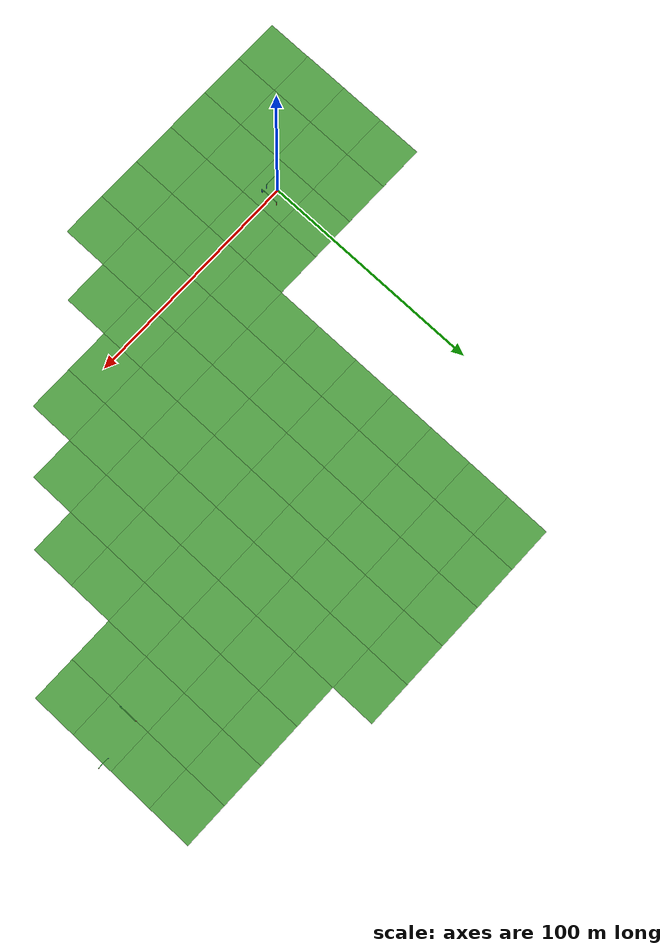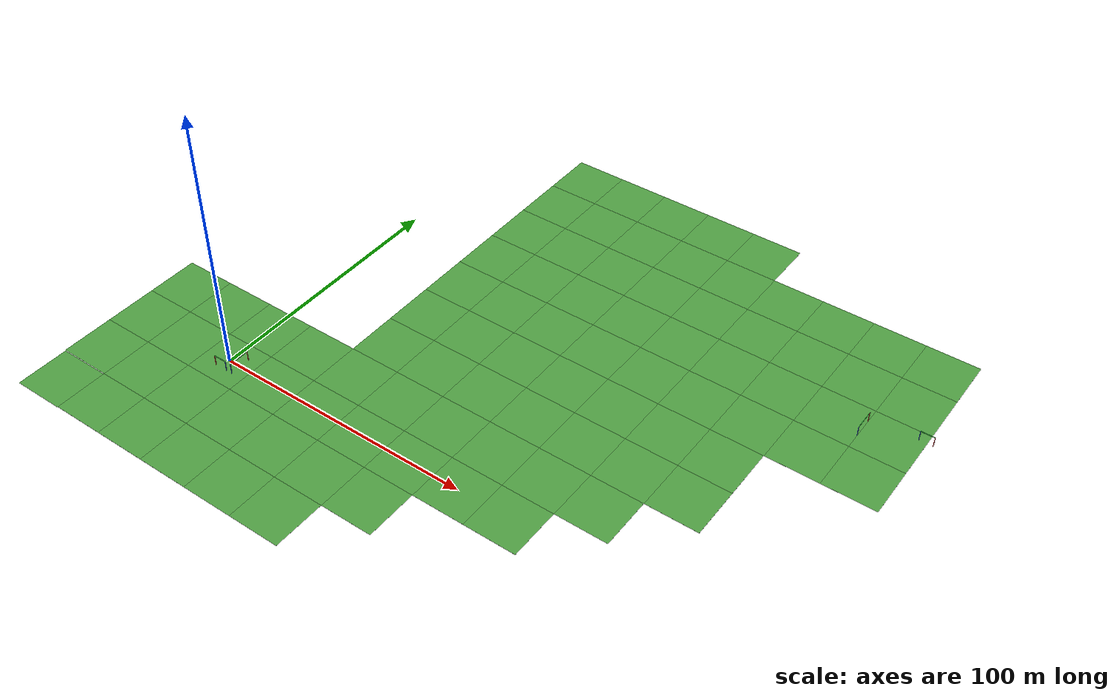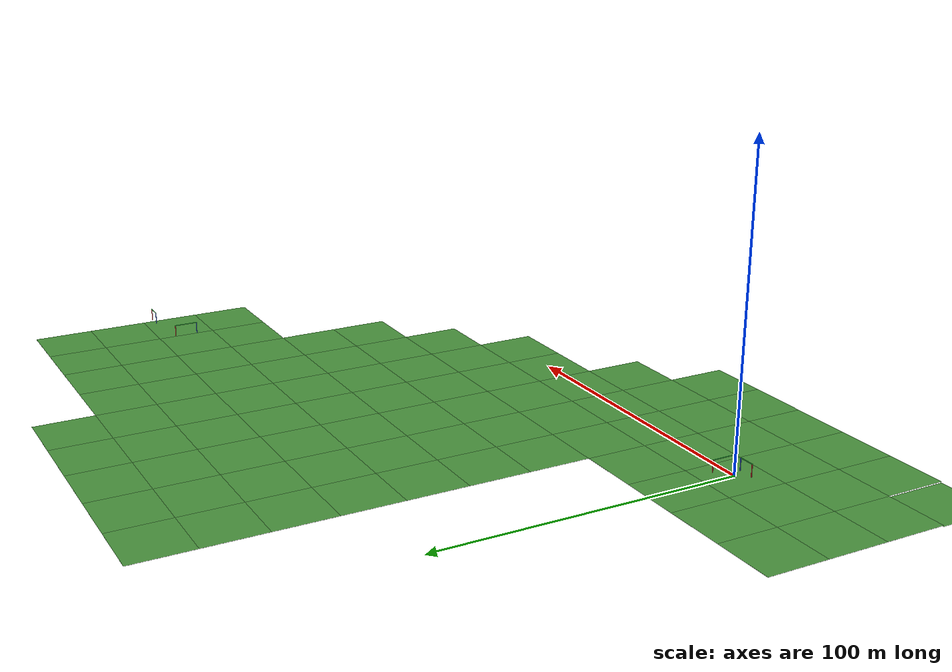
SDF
<sdf version="1.4">
 <world name="vrc_task_1">
  <scene><ambient>0.2 0.2 0.2 1.0</ambient><grid>false</grid></scene>
  <physics type="ode">
   <gravity>0 0 -9.81</gravity>
   <ode>
    <solver><type>quick</type><iters>50</iters><sor>1.4</sor></solver>
    <constraints>
     <cfm>0.0</cfm>
     <erp>0.2</erp>
     <contact_max_correcting_vel>100.0</contact_max_correcting_vel>
     <contact_surface_layer>0.0</contact_surface_layer>
    </constraints>
   </ode>
   <real_time_update_rate>1000</real_time_update_rate>
   <max_step_size>0.001</max_step_size>
  </physics>
  <light type="directional" name="sun">
   <cast_shadows>false</cast_shadows>
   <pose>0 0 100 0 0 0</pose>
   <diffuse>0.8 0.8 0.8 1</diffuse>
   <specular>0.9 0.9 0.9 1</specular>
   <attenuation>
    <range>1000</range>
    <constant>0.9</constant>
    <linear>0.01</linear>
    <quadratic>0.001</quadratic>
   </attenuation>
   <direction>0.2 0.2 -0.9</direction>
  </light>
  <light type="point" name="light_bulb">
   <cast_shadows>false</cast_shadows>
   <pose>-14 0 5 0 0 0</pose>
   <diffuse>0.3 0.3 0.3 1</diffuse>
   <specular>0.0 0.0 0.0 1</specular>
   <attenuation>
    <range>80</range>
    <constant>0.9</constant>
    <linear>0.01</linear>
    <quadratic>0.001</quadratic>
   </attenuation>
  </light>
  <include><uri>model://grass_plane</uri></include>
  <include>
   <uri>model://gate</uri>
   <name>gate_3</name>
   <static>true</static>
   <pose>0 -4 2.0 0 0 -1.5707</pose>
  </include>
  <include>
   <uri>model://gate</uri>
   <name>gate_0</name>
   <static>true</static>
   <pose>209.5 106 2.0 0 0 1.5707</pose>
  </include>
  <include>
   <uri>model://vehicle_gate</uri>
   <name>vehiclegate_1</name>
   <static>true</static>
   <pose>190 100 2.0 0 0 3.1415</pose>
  </include>
  <include>
   <uri>model://vehicle_gate</uri>
   <name>vehiclegate_2</name>
   <static>true</static>
   <pose>5 0 2.0 0 0 3.1415</pose>
  </include>
  <model name="road_boxes">
   <static>true</static>
   <link name="link">
    <collision name="collision_1">
     <pose>51 0 0 0 0 0</pose>
     <geometry><box><size>102 7.34 0.02</size></box></geometry>
     <surface><friction><ode><mu>100</mu><mu2>50</mu2></ode></friction></surface>
    </collision>
    <collision name="collision_2">
     <pose>125 25 0 0 0 0.78539</pose>
     <geometry><box><size>72 7.34 0.02</size></box></geometry>
     <surface><friction><ode><mu>100</mu><mu2>50</mu2></ode></friction></surface>
    </collision>
    <collision name="collision_3">
     <pose>150 75 0 0 0 0</pose>
     <geometry><box><size>7.34 53 0.02</size></box></geometry>
     <surface><friction><ode><mu>100</mu><mu2>50</mu2></ode></friction></surface>
    </collision>
    <collision name="collision_4">
     <pose>173.5 100 0 0 0 0</pose>
     <geometry><box><size>54.5 7.34 0.02</size></box></geometry>
     <surface><friction><ode><mu>100</mu><mu2>50</mu2></ode></friction></surface>
    </collision>
    <collision name="collision_5">
     <pose>0 -1 0 0 0 0</pose>
     <geometry><box><size>6 10 0.02</size></box></geometry>
     <surface><friction><ode><mu>100</mu><mu2>50</mu2></ode></friction></surface>
    </collision>
   </link>
  </model>
  <plugin filename="libVRCPlugin.so" name="vrc_plugin">
   <atlas><model_name>atlas</model_name><pin_link>utorso</pin_link></atlas>
   <drc_vehicle>
    <model_name>drc_vehicle</model_name>
    <seat_link>polaris_ranger_ev::chassis</seat_link>
   </drc_vehicle>
   <drc_fire_hose>
    <fire_hose_model>fire_hose</fire_hose_model>
    <coupling_link>coupling</coupling_link>
    <standpipe_model>standpipe</standpipe_model>
    <spout_link>standpipe</spout_link>
    <thread_pitch>-1000</thread_pitch>
    <coupling_relative_pose>1.17038e-05 -0.125623 0.35 -0.0412152 -1.57078 1.61199</coupling_relative_pose>
   </drc_fire_hose>
  </plugin>
  <plugin filename="libVRCScoringPlugin.so" name="vrc_scoring">
   <score_file>/tmp/vrc_final_task5/score.log</score_file>
  </plugin>
 </world>
</sdf>

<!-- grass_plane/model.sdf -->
<sdf version='1.4'>
  <model name='grass_plane'>
    <static>true</static>
    <link name='link'>
      <collision name='collision'>
        <geometry>
          <plane>
            <normal>0 0 1</normal>
            <size>500 500</size>
          </plane>
        </geometry>
        <surface>
          <friction>
            <ode>
              <mu>0.5</mu>
              <mu2>.5</mu2>
            </ode>
          </friction>
        </surface>
      </collision>

      <visual name='visual_0'>
        <pose>-40 -40 0 0 0 0</pose>

        <cast_shadows>false</cast_shadows>
        <geometry>
          <plane>
            <normal>0 0 1</normal>
            <size>20 20</size>
          </plane>
        </geometry>
        <material>
          <script>
            <uri>model://grass_plane/materials/scripts</uri>
            <uri>model://grass_plane/materials/textures</uri>
            <name>vrc/grass</name>
          </script>
        </material>
      </visual>

      <visual name='visual_1'>
        <pose>-20 -40 0 0 0 0</pose>

        <cast_shadows>false</cast_shadows>
        <geometry>
          <plane>
            <normal>0 0 1</normal>
            <size>20 20</size>
          </plane>
        </geometry>
        <material>
          <script>
            <uri>model://grass_plane/materials/scripts</uri>
            <uri>model://grass_plane/materials/textures</uri>
            <name>vrc/grass</name>
          </script>
        </material>
      </visual>

      <visual name='visual_2'>
        <pose>0 -40 0 0 0 0</pose>

        <cast_shadows>false</cast_shadows>
        <geometry>
          <plane>
            <normal>0 0 1</normal>
            <size>20 20</size>
          </plane>
        </geometry>
        <material>
          <script>
            <uri>model://grass_plane/materials/scripts</uri>
            <uri>model://grass_plane/materials/textures</uri>
            <name>vrc/grass</name>
          </script>
        </material>
      </visual>

      <visual name='visual_3'>
        <pose>20 -40 0 0 0 0</pose>

        <cast_shadows>false</cast_shadows>
        <geometry>
          <plane>
            <normal>0 0 1</normal>
            <size>20 20</size>
          </plane>
        </geometry>
        <material>
          <script>
            <uri>model://grass_plane/materials/scripts</uri>
            <uri>model://grass_plane/materials/textures</uri>
            <name>vrc/grass</name>
          </script>
        </material>
      </visual>

      <visual name='visual_4'>
        <pose>40 -40 0 0 0 0</pose>

        <cast_shadows>false</cast_shadows>
        <geometry>
          <plane>
            <normal>0 0 1</normal>
            <size>20 20</size>
          </plane>
        </geometry>
        <material>
          <script>
            <uri>model://grass_plane/materials/scripts</uri>
            <uri>model://grass_plane/materials/textures</uri>
            <name>vrc/grass</name>
          </script>
        </material>
      </visual>

      <visual name='visual_5'>
        <pose>60 -40 0 0 0 0</pose>

        <cast_shadows>false</cast_shadows>
        <geometry>
          <plane>
            <normal>0 0 1</normal>
            <size>20 20</size>
          </plane>
        </geometry>
        <material>
          <script>
            <uri>model://grass_plane/materials/scripts</uri>
            <uri>model://grass_plane/materials/textures</uri>
            <name>vrc/grass</name>
          </script>
        </material>
      </visual>

      <visual name='visual_6'>
        <pose>-40 -20 0 0 0 0</pose>

        <cast_shadows>false</cast_shadows>
        <geometry>
          <plane>
            <normal>0 0 1</normal>
            <size>20 20</size>
          </plane>
        </geometry>
        <material>
          <script>
            <uri>model://grass_plane/materials/scripts</uri>
            <uri>model://grass_plane/materials/textures</uri>
            <name>vrc/grass</name>
          </script>
        </material>
      </visual>

      <visual name='visual_7'>
        <pose>-20 -20 0 0 0 0</pose>

        <cast_shadows>false</cast_shadows>
        <geometry>
          <plane>
            <normal>0 0 1</normal>
            <size>20 20</size>
          </plane>
        </geometry>
        <material>
          <script>
            <uri>model://grass_plane/materials/scripts</uri>
            <uri>model://grass_plane/materials/textures</uri>
            <name>vrc/grass</name>
          </script>
        </material>
      </visual>

      <visual name='visual_8'>
        <pose>0 -20 0 0 0 0</pose>

        <cast_shadows>false</cast_shadows>
        <geometry>
          <plane>
            <normal>0 0 1</normal>
            <size>20 20</size>
          </plane>
        </geometry>
        <material>
          <script>
            <uri>model://grass_plane/materials/scripts</uri>
            <uri>model://grass_plane/materials/textures</uri>
            <name>vrc/grass</name>
          </script>
        </material>
      </visual>

      <visual name='visual_9'>
        <pose>20 -20 0 0 0 0</pose>

        <cast_shadows>false</cast_shadows>
        <geometry>
          <plane>
            <normal>0 0 1</normal>
            <size>20 20</size>
          </plane>
        </geometry>
        <material>
          <script>
            <uri>model://grass_plane/materials/scripts</uri>
            <uri>model://grass_plane/materials/textures</uri>
            <name>vrc/grass</name>
          </script>
        </material>
      </visual>

      <visual name='visual_10'>
        <pose>40 -20 0 0 0 0</pose>

        <cast_shadows>false</cast_shadows>
        <geometry>
          <plane>
            <normal>0 0 1</normal>
            <size>20 20</size>
          </plane>
        </geometry>
        <material>
          <script>
            <uri>model://grass_plane/materials/scripts</uri>
            <uri>model://grass_plane/materials/textures</uri>
            <name>vrc/grass</name>
          </script>
        </material>
      </visual>

      <visual name='visual_11'>
        <pose>60 -20 0 0 0 0</pose>

        <cast_shadows>false</cast_shadows>
        <geometry>
          <plane>
            <normal>0 0 1</normal>
            <size>20 20</size>
          </plane>
        </geometry>
        <material>
          <script>
            <uri>model://grass_plane/materials/scripts</uri>
            <uri>model://grass_plane/materials/textures</uri>
            <name>vrc/grass</name>
          </script>
        </material>
      </visual>

      <visual name='visual_12'>
        <pose>80 -20 0 0 0 0</pose>

        <cast_shadows>false</cast_shadows>
        <geometry>
          <plane>
            <normal>0 0 1</normal>
            <size>20 20</size>
          </plane>
        </geometry>
        <material>
          <script>
            <uri>model://grass_plane/materials/scripts</uri>
            <uri>model://grass_plane/materials/textures</uri>
            <name>vrc/grass</name>
          </script>
        </material>
      </visual>

      <visual name='visual_13'>
        <pose>-40 0 0 0 0 0</pose>

        <cast_shadows>false</cast_shadows>
        <geometry>
          <plane>
            <normal>0 0 1</normal>
            <size>20 20</size>
          </plane>
        </geometry>
        <material>
          <script>
            <uri>model://grass_plane/materials/scripts</uri>
            <uri>model://grass_plane/materials/textures</uri>
            <name>vrc/grass</name>
          </script>
        </material>
      </visual>

      <visual name='visual_14'>
        <pose>-20 0 0 0 0 0</pose>

        <cast_shadows>false</cast_shadows>
        <geometry>
          <plane>
            <normal>0 0 1</normal>
            <size>20 20</size>
          </plane>
        </geometry>
        <material>
          <script>
            <uri>model://grass_plane/materials/scripts</uri>
            <uri>model://grass_plane/materials/textures</uri>
            <name>vrc/grass</name>
          </script>
        </material>
      </visual>

      <visual name='visual_15'>
        <pose>0 0 0 0 0 0</pose>

        <cast_shadows>false</cast_shadows>
        <geometry>
          <plane>
            <normal>0 0 1</normal>
            <size>20 20</size>
          </plane>
        </geometry>
        <material>
          <script>
            <uri>model://grass_plane/materials/scripts</uri>
            <uri>model://grass_plane/materials/textures</uri>
            <name>vrc/grass</name>
          </script>
        </material>
      </visual>

      <visual name='visual_16'>
        <pose>20 0 0 0 0 0</pose>

        <cast_shadows>false</cast_shadows>
        <geometry>
          <plane>
            <normal>0 0 1</normal>
            <size>20 20</size>
          </plane>
        </geometry>
        <material>
          <script>
            <uri>model://grass_plane/materials/scripts</uri>
            <uri>model://grass_plane/materials/textures</uri>
            <name>vrc/grass</name>
          </script>
        </material>
      </visual>

      <visual name='visual_17'>
        <pose>40 0 0 0 0 0</pose>

        <cast_shadows>false</cast_shadows>
        <geometry>
          <plane>
            <normal>0 0 1</normal>
            <size>20 20</size>
          </plane>
        </geometry>
        <material>
          <script>
            <uri>model://grass_plane/materials/scripts</uri>
            <uri>model://grass_plane/materials/textures</uri>
            <name>vrc/grass</name>
          </script>
        </material>
      </visual>

      <visual name='visual_18'>
        <pose>60 0 0 0 0 0</pose>

        <cast_shadows>false</cast_shadows>
        <geometry>
          <plane>
            <normal>0 0 1</normal>
            <size>20 20</size>
          </plane>
        </geometry>
        <material>
          <script>
            <uri>model://grass_plane/materials/scripts</uri>
            <uri>model://grass_plane/materials/textures</uri>
            <name>vrc/grass</name>
          </script>
        </material>
      </visual>

      <visual name='visual_19'>
        <pose>80 0 0 0 0 0</pose>

        <cast_shadows>false</cast_shadows>
        <geometry>
          <plane>
            <normal>0 0 1</normal>
            <size>20 20</size>
          </plane>
        </geometry>
        <material>
          <script>
            <uri>model://grass_plane/materials/scripts</uri>
            <uri>model://grass_plane/materials/textures</uri>
            <name>vrc/grass</name>
          </script>
        </material>
      </visual>

      <visual name='visual_20'>
        <pose>100 0 0 0 0 0</pose>

        <cast_shadows>false</cast_shadows>
        <geometry>
          <plane>
            <normal>0 0 1</normal>
            <size>20 20</size>
          </plane>
        </geometry>
        <material>
          <script>
            <uri>model://grass_plane/materials/scripts</uri>
            <uri>model://grass_plane/materials/textures</uri>
            <name>vrc/grass</name>
          </script>
        </material>
      </visual>

      <visual name='visual_21'>
        <pose>120 0 0 0 0 0</pose>

        <cast_shadows>false</cast_shadows>
        <geometry>
          <plane>
            <normal>0 0 1</normal>
            <size>20 20</size>
          </plane>
        </geometry>
        <material>
          <script>
            <uri>model://grass_plane/materials/scripts</uri>
            <uri>model://grass_plane/materials/textures</uri>
            <name>vrc/grass</name>
          </script>
        </material>
      </visual>

      <visual name='visual_22'>
        <pose>-40 20 0 0 0 0</pose>

        <cast_shadows>false</cast_shadows>
        <geometry>
          <plane>
            <normal>0 0 1</normal>
            <size>20 20</size>
          </plane>
        </geometry>
        <material>
          <script>
            <uri>model://grass_plane/materials/scripts</uri>
            <uri>model://grass_plane/materials/textures</uri>
            <name>vrc/grass</name>
          </script>
        </material>
      </visual>

      <visual name='visual_23'>
        <pose>-20 20 0 0 0 0</pose>

        <cast_shadows>false</cast_shadows>
        <geometry>
          <plane>
            <normal>0 0 1</normal>
            <size>20 20</size>
          </plane>
        </geometry>
        <material>
          <script>
            <uri>model://grass_plane/materials/scripts</uri>
            <uri>model://grass_plane/materials/textures</uri>
            <name>vrc/grass</name>
          </script>
        </material>
      </visual>

      <visual name='visual_24'>
        <pose>0 20 0 0 0 0</pose>

        <cast_shadows>false</cast_shadows>
        <geometry>
          <plane>
            <normal>0 0 1</normal>
            <size>20 20</size>
          </plane>
        </geometry>
        <material>
          <script>
            <uri>model://grass_plane/materials/scripts</uri>
            <uri>model://grass_plane/materials/textures</uri>
            <name>vrc/grass</name>
          </script>
        </material>
      </visual>

      <visual name='visual_25'>
        <pose>20 20 0 0 0 0</pose>

        <cast_shadows>false</cast_shadows>
        <geometry>
          <plane>
            <normal>0 0 1</normal>
            <size>20 20</size>
          </plane>
        </geometry>
        <material>
          <script>
            <uri>model://grass_plane/materials/scripts</uri>
            <uri>model://grass_plane/materials/textures</uri>
            <name>vrc/grass</name>
          </script>
        </material>
      </visual>

      <visual name='visual_26'>
        <pose>40 20 0 0 0 0</pose>

        <cast_shadows>false</cast_shadows>
        <geometry>
          <plane>
            <normal>0 0 1</normal>
            <size>20 20</size>
          </plane>
        </geometry>
        <material>
          <script>
            <uri>model://grass_plane/materials/scripts</uri>
            <uri>model://grass_plane/materials/textures</uri>
            <name>vrc/grass</name>
          </script>
        </material>
      </visual>

      <visual name='visual_27'>
        <pose>60 20 0 0 0 0</pose>

        <cast_shadows>false</cast_shadows>
        <geometry>
          <plane>
            <normal>0 0 1</normal>
            <size>20 20</size>
          </plane>
        </geometry>
        <material>
          <script>
            <uri>model://grass_plane/materials/scripts</uri>
            <uri>model://grass_plane/materials/textures</uri>
            <name>vrc/grass</name>
          </script>
        </material>
      </visual>

      <visual name='visual_28'>
        <pose>80 20 0 0 0 0</pose>

        <cast_shadows>false</cast_shadows>
        <geometry>
          <plane>
            <normal>0 0 1</normal>
            <size>20 20</size>
          </plane>
        </geometry>
        <material>
          <script>
            <uri>model://grass_plane/materials/scripts</uri>
            <uri>model://grass_plane/materials/textures</uri>
            <name>vrc/grass</name>
          </script>
        </material>
      </visual>

      <visual name='visual_29'>
        <pose>100 20 0 0 0 0</pose>

        <cast_shadows>false</cast_shadows>
        <geometry>
          <plane>
            <normal>0 0 1</normal>
            <size>20 20</size>
          </plane>
        </geometry>
        <material>
          <script>
            <uri>model://grass_plane/materials/scripts</uri>
            <uri>model://grass_plane/materials/textures</uri>
            <name>vrc/grass</name>
          </script>
        </material>
      </visual>

      <visual name='visual_30'>
        <pose>120 20 0 0 0 0</pose>

        <cast_shadows>false</cast_shadows>
        <geometry>
          <plane>
            <normal>0 0 1</normal>
            <size>20 20</size>
          </plane>
        </geometry>
        <material>
          <script>
            <uri>model://grass_plane/materials/scripts</uri>
            <uri>model://grass_plane/materials/textures</uri>
            <name>vrc/grass</name>
          </script>
        </material>
      </visual>

      <visual name='visual_31'>
        <pose>140 20 0 0 0 0</pose>

        <cast_shadows>false</cast_shadows>
        <geometry>
          <plane>
            <normal>0 0 1</normal>
            <size>20 20</size>
          </plane>
        </geometry>
        <material>
          <script>
            <uri>model://grass_plane/materials/scripts</uri>
            <uri>model://grass_plane/materials/textures</uri>
            <name>vrc/grass</name>
          </script>
        </material>
      </visual>

      <visual name='visual_32'>
        <pose>40 40 0 0 0 0</pose>

        <cast_shadows>false</cast_shadows>
        <geometry>
          <plane>
            <normal>0 0 1</normal>
            <size>20 20</size>
          </plane>
        </geometry>
        <material>
          <script>
            <uri>model://grass_plane/materials/scripts</uri>
            <uri>model://grass_plane/materials/textures</uri>
            <name>vrc/grass</name>
          </script>
        </material>
      </visual>

      <visual name='visual_33'>
        <pose>60 40 0 0 0 0</pose>

        <cast_shadows>false</cast_shadows>
        <geometry>
          <plane>
            <normal>0 0 1</normal>
            <size>20 20</size>
          </plane>
        </geometry>
        <material>
          <script>
            <uri>model://grass_plane/materials/scripts</uri>
            <uri>model://grass_plane/materials/textures</uri>
            <name>vrc/grass</name>
          </script>
        </material>
      </visual>

      <visual name='visual_34'>
        <pose>80 40 0 0 0 0</pose>

        <cast_shadows>false</cast_shadows>
        <geometry>
          <plane>
            <normal>0 0 1</normal>
            <size>20 20</size>
          </plane>
        </geometry>
        <material>
          <script>
            <uri>model://grass_plane/materials/scripts</uri>
            <uri>model://grass_plane/materials/textures</uri>
            <name>vrc/grass</name>
          </script>
        </material>
      </visual>

      <visual name='visual_35'>
        <pose>100 40 0 0 0 0</pose>

        <cast_shadows>false</cast_shadows>
        <geometry>
          <plane>
            <normal>0 0 1</normal>
            <size>20 20</size>
          </plane>
        </geometry>
        <material>
          <script>
            <uri>model://grass_plane/materials/scripts</uri>
            <uri>model://grass_plane/materials/textures</uri>
            <name>vrc/grass</name>
          </script>
        </material>
      </visual>

      <visual name='visual_36'>
        <pose>120 40 0 0 0 0</pose>

        <cast_shadows>false</cast_shadows>
        <geometry>
          <plane>
            <normal>0 0 1</normal>
            <size>20 20</size>
          </plane>
        </geometry>
        <material>
          <script>
            <uri>model://grass_plane/materials/scripts</uri>
            <uri>model://grass_plane/materials/textures</uri>
            <name>vrc/grass</name>
          </script>
        </material>
      </visual>

      <visual name='visual_37'>
        <pose>140 40 0 0 0 0</pose>

        <cast_shadows>false</cast_shadows>
        <geometry>
          <plane>
            <normal>0 0 1</normal>
            <size>20 20</size>
          </plane>
        </geometry>
        <material>
          <script>
            <uri>model://grass_plane/materials/scripts</uri>
            <uri>model://grass_plane/materials/textures</uri>
            <name>vrc/grass</name>
          </script>
        </material>
      </visual>

      <visual name='visual_38'>
        <pose>160 40 0 0 0 0</pose>

        <cast_shadows>false</cast_shadows>
        <geometry>
          <plane>
            <normal>0 0 1</normal>
            <size>20 20</size>
          </plane>
        </geometry>
        <material>
          <script>
            <uri>model://grass_plane/materials/scripts</uri>
            <uri>model://grass_plane/materials/textures</uri>
            <name>vrc/grass</name>
          </script>
        </material>
      </visual>

      <visual name='visual_39'>
        <pose>40 60 0 0 0 0</pose>

        <cast_shadows>false</cast_shadows>
        <geometry>
          <plane>
            <normal>0 0 1</normal>
            <size>20 20</size>
          </plane>
        </geometry>
        <material>
          <script>
            <uri>model://grass_plane/materials/scripts</uri>
            <uri>model://grass_plane/materials/textures</uri>
            <name>vrc/grass</name>
          </script>
        </material>
      </visual>

      <visual name='visual_40'>
        <pose>60 60 0 0 0 0</pose>

        <cast_shadows>false</cast_shadows>
        <geometry>
          <plane>
            <normal>0 0 1</normal>
            <size>20 20</size>
          </plane>
        </geometry>
        <material>
          <script>
            <uri>model://grass_plane/materials/scripts</uri>
            <uri>model://grass_plane/materials/textures</uri>
            <name>vrc/grass</name>
          </script>
        </material>
      </visual>

      <visual name='visual_41'>
        <pose>80 60 0 0 0 0</pose>

        <cast_shadows>false</cast_shadows>
        <geometry>
          <plane>
            <normal>0 0 1</normal>
            <size>20 20</size>
          </plane>
        </geometry>
        <material>
          <script>
            <uri>model://grass_plane/materials/scripts</uri>
            <uri>model://grass_plane/materials/textures</uri>
            <name>vrc/grass</name>
          </script>
        </material>
      </visual>

      <visual name='visual_42'>
        <pose>100 60 0 0 0 0</pose>

        <cast_shadows>false</cast_shadows>
        <geometry>
          <plane>
            <normal>0 0 1</normal>
            <size>20 20</size>
          </plane>
        </geometry>
        <material>
          <script>
            <uri>model://grass_plane/materials/scripts</uri>
            <uri>model://grass_plane/materials/textures</uri>
            <name>vrc/grass</name>
          </script>
        </material>
      </visual>

      <visual name='visual_43'>
        <pose>120 60 0 0 0 0</pose>

        <cast_shadows>false</cast_shadows>
        <geometry>
          <plane>
            <normal>0 0 1</normal>
            <size>20 20</size>
          </plane>
        </geometry>
        <material>
          <script>
            <uri>model://grass_plane/materials/scripts</uri>
            <uri>model://grass_plane/materials/textures</uri>
            <name>vrc/grass</name>
          </script>
        </material>
      </visual>

      <visual name='visual_44'>
        <pose>140 60 0 0 0 0</pose>

        <cast_shadows>false</cast_shadows>
        <geometry>
          <plane>
            <normal>0 0 1</normal>
            <size>20 20</size>
          </plane>
        </geometry>
        <material>
          <script>
            <uri>model://grass_plane/materials/scripts</uri>
            <uri>model://grass_plane/materials/textures</uri>
            <name>vrc/grass</name>
          </script>
        </material>
      </visual>

      <visual name='visual_45'>
        <pose>160 60 0 0 0 0</pose>

        <cast_shadows>false</cast_shadows>
        <geometry>
          <plane>
            <normal>0 0 1</normal>
            <size>20 20</size>
          </plane>
        </geometry>
        <material>
          <script>
            <uri>model://grass_plane/materials/scripts</uri>
            <uri>model://grass_plane/materials/textures</uri>
            <name>vrc/grass</name>
          </script>
        </material>
      </visual>

      <visual name='visual_46'>
        <pose>40 80 0 0 0 0</pose>

        <cast_shadows>false</cast_shadows>
        <geometry>
          <plane>
            <normal>0 0 1</normal>
            <size>20 20</size>
          </plane>
        </geometry>
        <material>
          <script>
            <uri>model://grass_plane/materials/scripts</uri>
            <uri>model://grass_plane/materials/textures</uri>
            <name>vrc/grass</name>
          </script>
        </material>
      </visual>

      <visual name='visual_47'>
        <pose>60 80 0 0 0 0</pose>

        <cast_shadows>false</cast_shadows>
        <geometry>
          <plane>
            <normal>0 0 1</normal>
            <size>20 20</size>
          </plane>
        </geometry>
        <material>
          <script>
            <uri>model://grass_plane/materials/scripts</uri>
            <uri>model://grass_plane/materials/textures</uri>
            <name>vrc/grass</name>
          </script>
        </material>
      </visual>

      <visual name='visual_48'>
        <pose>80 80 0 0 0 0</pose>

        <cast_shadows>false</cast_shadows>
        <geometry>
          <plane>
            <normal>0 0 1</normal>
            <size>20 20</size>
          </plane>
        </geometry>
        <material>
          <script>
            <uri>model://grass_plane/materials/scripts</uri>
            <uri>model://grass_plane/materials/textures</uri>
            <name>vrc/grass</name>
          </script>
        </material>
      </visual>

      <visual name='visual_49'>
        <pose>100 80 0 0 0 0</pose>

        <cast_shadows>false</cast_shadows>
        <geometry>
          <plane>
            <normal>0 0 1</normal>
            <size>20 20</size>
          </plane>
        </geometry>
        <material>
          <script>
            <uri>model://grass_plane/materials/scripts</uri>
            <uri>model://grass_plane/materials/textures</uri>
            <name>vrc/grass</name>
          </script>
        </material>
      </visual>

      <visual name='visual_50'>
        <pose>120 80 0 0 0 0</pose>

        <cast_shadows>false</cast_shadows>
        <geometry>
          <plane>
            <normal>0 0 1</normal>
            <size>20 20</size>
          </plane>
        </geometry>
        <material>
          <script>
            <uri>model://grass_plane/materials/scripts</uri>
            <uri>model://grass_plane/materials/textures</uri>
            <name>vrc/grass</name>
          </script>
        </material>
      </visual>

      <visual name='visual_51'>
        <pose>140 80 0 0 0 0</pose>

        <cast_shadows>false</cast_shadows>
        <geometry>
          <plane>
            <normal>0 0 1</normal>
            <size>20 20</size>
          </plane>
        </geometry>
        <material>
          <script>
            <uri>model://grass_plane/materials/scripts</uri>
            <uri>model://grass_plane/materials/textures</uri>
            <name>vrc/grass</name>
          </script>
        </material>
      </visual>

      <visual name='visual_52'>
        <pose>160 80 0 0 0 0</pose>

        <cast_shadows>false</cast_shadows>
        <geometry>
          <plane>
            <normal>0 0 1</normal>
            <size>20 20</size>
          </plane>
        </geometry>
        <material>
          <script>
            <uri>model://grass_plane/materials/scripts</uri>
            <uri>model://grass_plane/materials/textures</uri>
            <name>vrc/grass</name>
          </script>
        </material>
      </visual>

      <visual name='visual_53'>
        <pose>180 80 0 0 0 0</pose>

        <cast_shadows>false</cast_shadows>
        <geometry>
          <plane>
            <normal>0 0 1</normal>
            <size>20 20</size>
          </plane>
        </geometry>
        <material>
          <script>
            <uri>model://grass_plane/materials/scripts</uri>
            <uri>model://grass_plane/materials/textures</uri>
            <name>vrc/grass</name>
          </script>
        </material>
      </visual>

      <visual name='visual_54'>
        <pose>200 80 0 0 0 0</pose>

        <cast_shadows>false</cast_shadows>
        <geometry>
          <plane>
            <normal>0 0 1</normal>
            <size>20 20</size>
          </plane>
        </geometry>
        <material>
          <script>
            <uri>model://grass_plane/materials/scripts</uri>
            <uri>model://grass_plane/materials/textures</uri>
            <name>vrc/grass</name>
          </script>
        </material>
      </visual>

      <visual name='visual_55'>
        <pose>40 100 0 0 0 0</pose>

        <cast_shadows>false</cast_shadows>
        <geometry>
          <plane>
            <normal>0 0 1</normal>
            <size>20 20</size>
          </plane>
        </geometry>
        <material>
          <script>
            <uri>model://grass_plane/materials/scripts</uri>
            <uri>model://grass_plane/materials/textures</uri>
            <name>vrc/grass</name>
          </script>
        </material>
      </visual>

      <visual name='visual_56'>
        <pose>60 100 0 0 0 0</pose>

        <cast_shadows>false</cast_shadows>
        <geometry>
          <plane>
            <normal>0 0 1</normal>
            <size>20 20</size>
          </plane>
        </geometry>
        <material>
          <script>
            <uri>model://grass_plane/materials/scripts</uri>
            <uri>model://grass_plane/materials/textures</uri>
            <name>vrc/grass</name>
          </script>
        </material>
      </visual>

      <visual name='visual_57'>
        <pose>80 100 0 0 0 0</pose>

        <cast_shadows>false</cast_shadows>
        <geometry>
          <plane>
            <normal>0 0 1</normal>
            <size>20 20</size>
          </plane>
        </geometry>
        <material>
          <script>
            <uri>model://grass_plane/materials/scripts</uri>
            <uri>model://grass_plane/materials/textures</uri>
            <name>vrc/grass</name>
          </script>
        </material>
      </visual>

      <visual name='visual_58'>
        <pose>100 100 0 0 0 0</pose>

        <cast_shadows>false</cast_shadows>
        <geometry>
          <plane>
            <normal>0 0 1</normal>
            <size>20 20</size>
          </plane>
        </geometry>
        <material>
          <script>
            <uri>model://grass_plane/materials/scripts</uri>
            <uri>model://grass_plane/materials/textures</uri>
            <name>vrc/grass</name>
          </script>
        </material>
      </visual>

      <visual name='visual_59'>
        <pose>120 100 0 0 0 0</pose>

        <cast_shadows>false</cast_shadows>
        <geometry>
          <plane>
            <normal>0 0 1</normal>
            <size>20 20</size>
          </plane>
        </geometry>
        <material>
          <script>
            <uri>model://grass_plane/materials/scripts</uri>
            <uri>model://grass_plane/materials/textures</uri>
            <name>vrc/grass</name>
          </script>
        </material>
      </visual>

      <visual name='visual_60'>
        <pose>140 100 0 0 0 0</pose>

        <cast_shadows>false</cast_shadows>
        <geometry>
          <plane>
            <normal>0 0 1</normal>
            <size>20 20</size>
          </plane>
        </geometry>
        <material>
          <script>
            <uri>model://grass_plane/materials/scripts</uri>
            <uri>model://grass_plane/materials/textures</uri>
            <name>vrc/grass</name>
          </script>
        </material>
      </visual>

      <visual name='visual_61'>
        <pose>160 100 0 0 0 0</pose>

        <cast_shadows>false</cast_shadows>
        <geometry>
          <plane>
            <normal>0 0 1</normal>
            <size>20 20</size>
          </plane>
        </geometry>
        <material>
          <script>
            <uri>model://grass_plane/materials/scripts</uri>
            <uri>model://grass_plane/materials/textures</uri>
            <name>vrc/grass</name>
          </script>
        </material>
      </visual>

      <visual name='visual_62'>
        <pose>180 100 0 0 0 0</pose>

        <cast_shadows>false</cast_shadows>
        <geometry>
          <plane>
            <normal>0 0 1</normal>
            <size>20 20</size>
          </plane>
        </geometry>
        <material>
          <script>
            <uri>model://grass_plane/materials/scripts</uri>
            <uri>model://grass_plane/materials/textures</uri>
            <name>vrc/grass</name>
          </script>
        </material>
      </visual>

      <visual name='visual_63'>
        <pose>200 100 0 0 0 0</pose>

        <cast_shadows>false</cast_shadows>
        <geometry>
          <plane>
            <normal>0 0 1</normal>
            <size>20 20</size>
          </plane>
        </geometry>
        <material>
          <script>
            <uri>model://grass_plane/materials/scripts</uri>
            <uri>model://grass_plane/materials/textures</uri>
            <name>vrc/grass</name>
          </script>
        </material>
      </visual>

      <visual name='visual_64'>
        <pose>40 120 0 0 0 0</pose>

        <cast_shadows>false</cast_shadows>
        <geometry>
          <plane>
            <normal>0 0 1</normal>
            <size>20 20</size>
          </plane>
        </geometry>
        <material>
          <script>
            <uri>model://grass_plane/materials/scripts</uri>
            <uri>model://grass_plane/materials/textures</uri>
            <name>vrc/grass</name>
          </script>
        </material>
      </visual>

      <visual name='visual_65'>
        <pose>60 120 0 0 0 0</pose>

        <cast_shadows>false</cast_shadows>
        <geometry>
          <plane>
            <normal>0 0 1</normal>
            <size>20 20</size>
          </plane>
        </geometry>
        <material>
          <script>
            <uri>model://grass_plane/materials/scripts</uri>
            <uri>model://grass_plane/materials/textures</uri>
            <name>vrc/grass</name>
          </script>
        </material>
      </visual>

      <visual name='visual_66'>
        <pose>80 120 0 0 0 0</pose>

        <cast_shadows>false</cast_shadows>
        <geometry>
          <plane>
            <normal>0 0 1</normal>
            <size>20 20</size>
          </plane>
        </geometry>
        <material>
          <script>
            <uri>model://grass_plane/materials/scripts</uri>
            <uri>model://grass_plane/materials/textures</uri>
            <name>vrc/grass</name>
          </script>
        </material>
      </visual>

      <visual name='visual_67'>
        <pose>100 120 0 0 0 0</pose>

        <cast_shadows>false</cast_shadows>
        <geometry>
          <plane>
            <normal>0 0 1</normal>
            <size>20 20</size>
          </plane>
        </geometry>
        <material>
          <script>
            <uri>model://grass_plane/materials/scripts</uri>
            <uri>model://grass_plane/materials/textures</uri>
            <name>vrc/grass</name>
          </script>
        </material>
      </visual>

      <visual name='visual_68'>
        <pose>120 120 0 0 0 0</pose>

        <cast_shadows>false</cast_shadows>
        <geometry>
          <plane>
            <normal>0 0 1</normal>
            <size>20 20</size>
          </plane>
        </geometry>
        <material>
          <script>
            <uri>model://grass_plane/materials/scripts</uri>
            <uri>model://grass_plane/materials/textures</uri>
            <name>vrc/grass</name>
          </script>
        </material>
      </visual>

      <visual name='visual_69'>
        <pose>140 120 0 0 0 0</pose>

        <cast_shadows>false</cast_shadows>
        <geometry>
          <plane>
            <normal>0 0 1</normal>
            <size>20 20</size>
          </plane>
        </geometry>
        <material>
          <script>
            <uri>model://grass_plane/materials/scripts</uri>
            <uri>model://grass_plane/materials/textures</uri>
            <name>vrc/grass</name>
          </script>
        </material>
      </visual>

      <visual name='visual_70'>
        <pose>160 120 0 0 0 0</pose>

        <cast_shadows>false</cast_shadows>
        <geometry>
          <plane>
            <normal>0 0 1</normal>
            <size>20 20</size>
          </plane>
        </geometry>
        <material>
          <script>
            <uri>model://grass_plane/materials/scripts</uri>
            <uri>model://grass_plane/materials/textures</uri>
            <name>vrc/grass</name>
          </script>
        </material>
      </visual>

      <visual name='visual_71'>
        <pose>180 120 0 0 0 0</pose>

        <cast_shadows>false</cast_shadows>
        <geometry>
          <plane>
            <normal>0 0 1</normal>
            <size>20 20</size>
          </plane>
        </geometry>
        <material>
          <script>
            <uri>model://grass_plane/materials/scripts</uri>
            <uri>model://grass_plane/materials/textures</uri>
            <name>vrc/grass</name>
          </script>
        </material>
      </visual>

      <visual name='visual_72'>
        <pose>200 120 0 0 0 0</pose>

        <cast_shadows>false</cast_shadows>
        <geometry>
          <plane>
            <normal>0 0 1</normal>
            <size>20 20</size>
          </plane>
        </geometry>
        <material>
          <script>
            <uri>model://grass_plane/materials/scripts</uri>
            <uri>model://grass_plane/materials/textures</uri>
            <name>vrc/grass</name>
          </script>
        </material>
      </visual>

      <visual name='visual_73'>
        <pose>40 140 0 0 0 0</pose>

        <cast_shadows>false</cast_shadows>
        <geometry>
          <plane>
            <normal>0 0 1</normal>
            <size>20 20</size>
          </plane>
        </geometry>
        <material>
          <script>
            <uri>model://grass_plane/materials/scripts</uri>
            <uri>model://grass_plane/materials/textures</uri>
            <name>vrc/grass</name>
          </script>
        </material>
      </visual>

      <visual name='visual_74'>
        <pose>60 140 0 0 0 0</pose>

        <cast_shadows>false</cast_shadows>
        <geometry>
          <plane>
            <normal>0 0 1</normal>
            <size>20 20</size>
          </plane>
        </geometry>
        <material>
          <script>
            <uri>model://grass_plane/materials/scripts</uri>
            <uri>model://grass_plane/materials/textures</uri>
            <name>vrc/grass</name>
          </script>
        </material>
      </visual>

      <visual name='visual_75'>
        <pose>80 140 0 0 0 0</pose>

        <cast_shadows>false</cast_shadows>
        <geometry>
          <plane>
            <normal>0 0 1</normal>
            <size>20 20</size>
          </plane>
        </geometry>
        <material>
          <script>
            <uri>model://grass_plane/materials/scripts</uri>
            <uri>model://grass_plane/materials/textures</uri>
            <name>vrc/grass</name>
          </script>
        </material>
      </visual>

      <visual name='visual_76'>
        <pose>100 140 0 0 0 0</pose>

        <cast_shadows>false</cast_shadows>
        <geometry>
          <plane>
            <normal>0 0 1</normal>
            <size>20 20</size>
          </plane>
        </geometry>
        <material>
          <script>
            <uri>model://grass_plane/materials/scripts</uri>
            <uri>model://grass_plane/materials/textures</uri>
            <name>vrc/grass</name>
          </script>
        </material>
      </visual>

      <visual name='visual_77'>
        <pose>120 140 0 0 0 0</pose>

        <cast_shadows>false</cast_shadows>
        <geometry>
          <plane>
            <normal>0 0 1</normal>
            <size>20 20</size>
          </plane>
        </geometry>
        <material>
          <script>
            <uri>model://grass_plane/materials/scripts</uri>
            <uri>model://grass_plane/materials/textures</uri>
            <name>vrc/grass</name>
          </script>
        </material>
      </visual>

      <visual name='visual_78'>
        <pose>140 140 0 0 0 0</pose>

        <cast_shadows>false</cast_shadows>
        <geometry>
          <plane>
            <normal>0 0 1</normal>
            <size>20 20</size>
          </plane>
        </geometry>
        <material>
          <script>
            <uri>model://grass_plane/materials/scripts</uri>
            <uri>model://grass_plane/materials/textures</uri>
            <name>vrc/grass</name>
          </script>
        </material>
      </visual>

      <visual name='visual_79'>
        <pose>160 140 0 0 0 0</pose>

        <cast_shadows>false</cast_shadows>
        <geometry>
          <plane>
            <normal>0 0 1</normal>
            <size>20 20</size>
          </plane>
        </geometry>
        <material>
          <script>
            <uri>model://grass_plane/materials/scripts</uri>
            <uri>model://grass_plane/materials/textures</uri>
            <name>vrc/grass</name>
          </script>
        </material>
      </visual>

      <visual name='visual_80'>
        <pose>180 140 0 0 0 0</pose>

        <cast_shadows>false</cast_shadows>
        <geometry>
          <plane>
            <normal>0 0 1</normal>
            <size>20 20</size>
          </plane>
        </geometry>
        <material>
          <script>
            <uri>model://grass_plane/materials/scripts</uri>
            <uri>model://grass_plane/materials/textures</uri>
            <name>vrc/grass</name>
          </script>
        </material>
      </visual>

      <visual name='visual_81'>
        <pose>200 140 0 0 0 0</pose>

        <cast_shadows>false</cast_shadows>
        <geometry>
          <plane>
            <normal>0 0 1</normal>
            <size>20 20</size>
          </plane>
        </geometry>
        <material>
          <script>
            <uri>model://grass_plane/materials/scripts</uri>
            <uri>model://grass_plane/materials/textures</uri>
            <name>vrc/grass</name>
          </script>
        </material>
      </visual>

      <visual name='visual_82'>
        <pose>40 160 0 0 0 0</pose>

        <cast_shadows>false</cast_shadows>
        <geometry>
          <plane>
            <normal>0 0 1</normal>
            <size>20 20</size>
          </plane>
        </geometry>
        <material>
          <script>
            <uri>model://grass_plane/materials/scripts</uri>
            <uri>model://grass_plane/materials/textures</uri>
            <name>vrc/grass</name>
          </script>
        </material>
      </visual>

      <visual name='visual_83'>
        <pose>60 160 0 0 0 0</pose>

        <cast_shadows>false</cast_shadows>
        <geometry>
          <plane>
            <normal>0 0 1</normal>
            <size>20 20</size>
          </plane>
        </geometry>
        <material>
          <script>
            <uri>model://grass_plane/materials/scripts</uri>
            <uri>model://grass_plane/materials/textures</uri>
            <name>vrc/grass</name>
          </script>
        </material>
      </visual>

      <visual name='visual_84'>
        <pose>80 160 0 0 0 0</pose>

        <cast_shadows>false</cast_shadows>
        <geometry>
          <plane>
            <normal>0 0 1</normal>
            <size>20 20</size>
          </plane>
        </geometry>
        <material>
          <script>
            <uri>model://grass_plane/materials/scripts</uri>
            <uri>model://grass_plane/materials/textures</uri>
            <name>vrc/grass</name>
          </script>
        </material>
      </visual>

      <visual name='visual_85'>
        <pose>100 160 0 0 0 0</pose>

        <cast_shadows>false</cast_shadows>
        <geometry>
          <plane>
            <normal>0 0 1</normal>
            <size>20 20</size>
          </plane>
        </geometry>
        <material>
          <script>
            <uri>model://grass_plane/materials/scripts</uri>
            <uri>model://grass_plane/materials/textures</uri>
            <name>vrc/grass</name>
          </script>
        </material>
      </visual>

      <visual name='visual_86'>
        <pose>120 160 0 0 0 0</pose>

        <cast_shadows>false</cast_shadows>
        <geometry>
          <plane>
            <normal>0 0 1</normal>
            <size>20 20</size>
          </plane>
        </geometry>
        <material>
          <script>
            <uri>model://grass_plane/materials/scripts</uri>
            <uri>model://grass_plane/materials/textures</uri>
            <name>vrc/grass</name>
          </script>
        </material>
      </visual>

    </link>
  </model>
</sdf>

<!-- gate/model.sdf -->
<sdf version="1.4">
  <model name="gate">
    <static>true</static>
    <pose>0 0 2.0 0 0 0</pose>
    <link name="link">
      <collision name="right_collision">
        <pose>0 -2.5 0 0 0 0</pose>
        <geometry>
          <box>
            <size>0.2 0.2 4.0</size>
          </box>
        </geometry>
      </collision>
      <visual name="right_visual">
        <pose>0 -2.5 0 0 0 0</pose>
        <geometry>
          <box>
            <size>0.2 0.2 4.0</size>
          </box>
        </geometry>
        <material>
          <script>
            <uri>model://gate/materials/scripts/gate.material</uri>
            <uri>model://gate/materials/textures</uri>
            <name>vrc/red_gate</name>
          </script>
        </material>
      </visual>

      <collision name="left_collision">
        <pose>0 2.5 0 0 0 0</pose>
        <geometry>
          <box>
            <size>0.2 0.2 4.0</size>
          </box>
        </geometry>
      </collision>
      <visual name="left_visual">
        <pose>0 2.5 0 0 0 0</pose>
        <geometry>
          <box>
            <size>0.2 0.2 4.0</size>
          </box>
        </geometry>
        <material>
          <script>
            <uri>model://gate/materials/scripts/gate.material</uri>
            <uri>model://gate/materials/textures</uri>
            <name>vrc/blue_gate</name>
          </script>
        </material>
      </visual>

      <collision name="top_collision">
        <pose>0 0 2.1 0 0 0</pose>
        <geometry>
          <box>
            <size>0.2 5.2 0.2</size>
          </box>
        </geometry>
      </collision>
      <visual name="top_visual">
        <pose>0 0 2.1 0 0 0</pose>
        <geometry>
          <box>
            <size>0.2 5.2 0.2</size>
          </box>
        </geometry>
        <material>
          <script>
            <uri>model://gate/materials/scripts/gate.material</uri>
            <uri>model://gate/materials/textures</uri>
            <name>vrc/green_gate</name>
          </script>
        </material>
      </visual>
    </link>
  </model>
</sdf>

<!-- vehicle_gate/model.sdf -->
<sdf version="1.4">
  <model name="vehicle_gate">
    <static>true</static>
    <pose>0 0 2.0 0 0 0</pose>
    <link name="link">
      <collision name="right_collision">
        <pose>0 -4.0 0 0 0 0</pose>
        <geometry>
          <box>
            <size>0.2 0.2 4.0</size>
          </box>
        </geometry>
      </collision>
      <visual name="right_visual">
        <pose>0 -4.0 0 0 0 0</pose>
        <geometry>
          <box>
            <size>0.2 0.2 4.0</size>
          </box>
        </geometry>
        <material>
          <script>
            <uri>model://gate/materials/scripts/gate.material</uri>
            <uri>model://gate/materials/textures</uri>
            <name>vrc/red_gate</name>
          </script>
        </material>
      </visual>

      <collision name="left_collision">
        <pose>0 4.0 0 0 0 0</pose>
        <geometry>
          <box>
            <size>0.2 0.2 4.0</size>
          </box>
        </geometry>
      </collision>
      <visual name="left_visual">
        <pose>0 4.0 0 0 0 0</pose>
        <geometry>
          <box>
            <size>0.2 0.2 4.0</size>
          </box>
        </geometry>
        <material>
          <script>
            <uri>model://gate/materials/scripts/gate.material</uri>
            <uri>model://gate/materials/textures</uri>
            <name>vrc/blue_gate</name>
          </script>
        </material>
      </visual>

      <collision name="top_collision">
        <pose>0 0 2.1 0 0 0</pose>
        <geometry>
          <box>
            <size>0.2 8.2 0.2</size>
          </box>
        </geometry>
      </collision>
      <visual name="top_visual">
        <pose>0 0 2.1 0 0 0</pose>
        <geometry>
          <box>
            <size>0.2 8.2 0.2</size>
          </box>
        </geometry>
        <material>
          <script>
            <uri>model://gate/materials/scripts/gate.material</uri>
            <uri>model://gate/materials/textures</uri>
            <name>vrc/green_gate</name>
          </script>
        </material>
      </visual>
    </link>
  </model>
</sdf>
